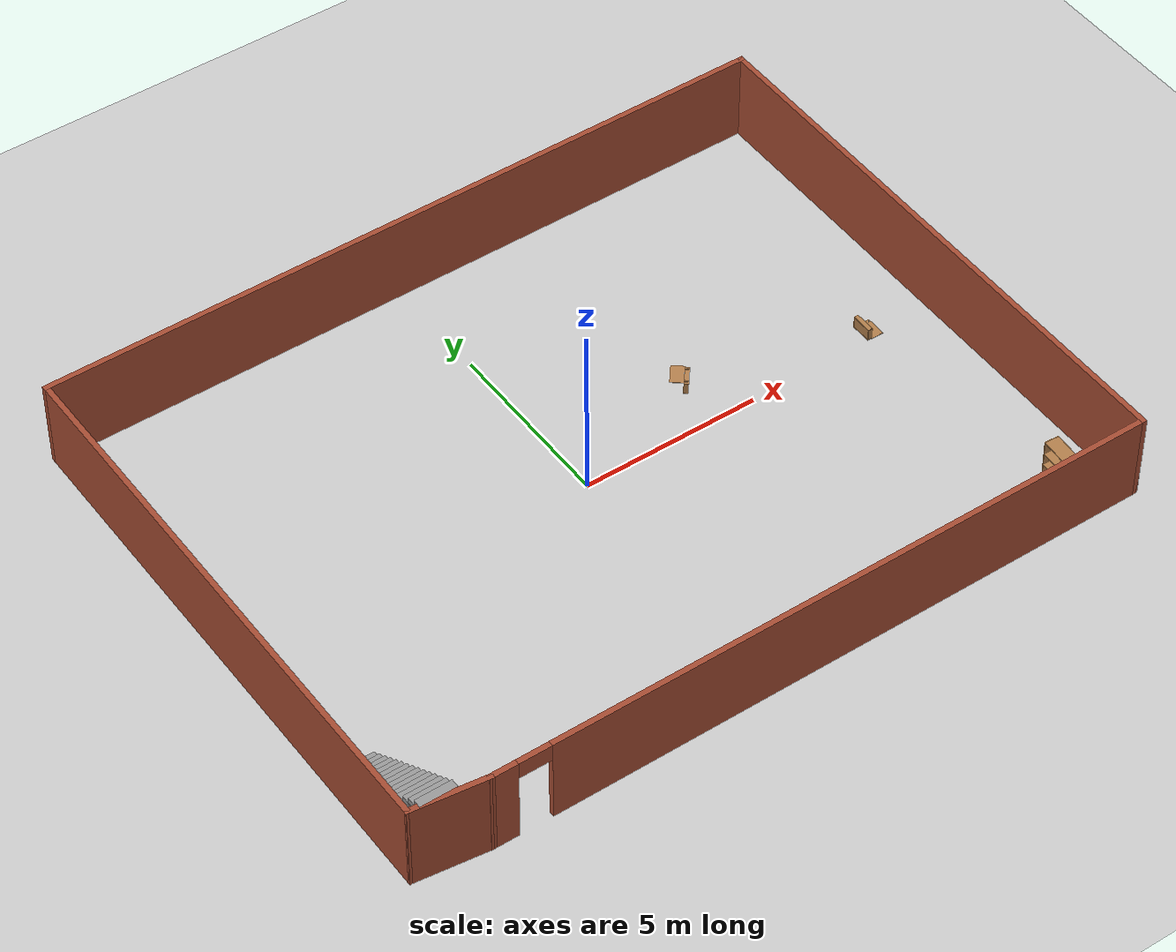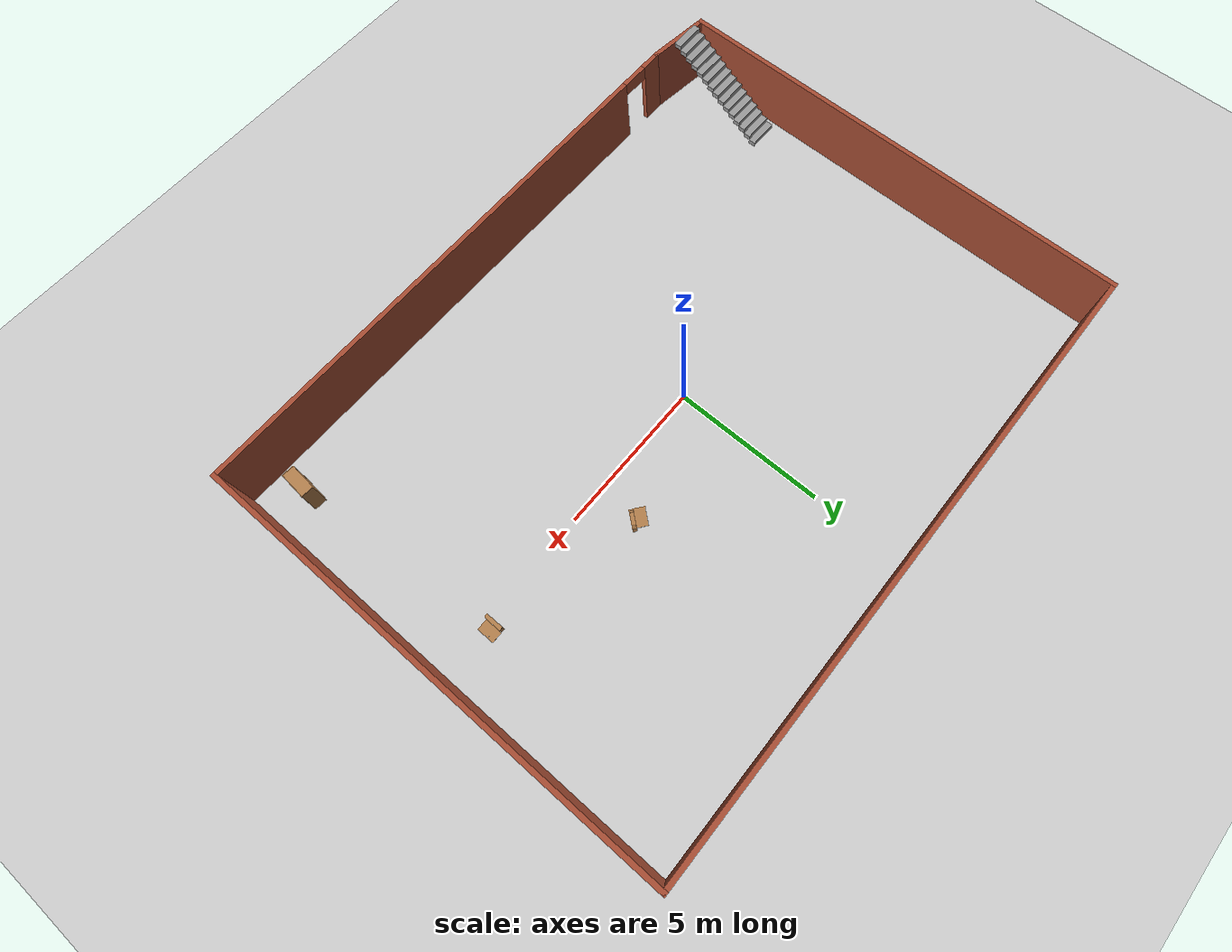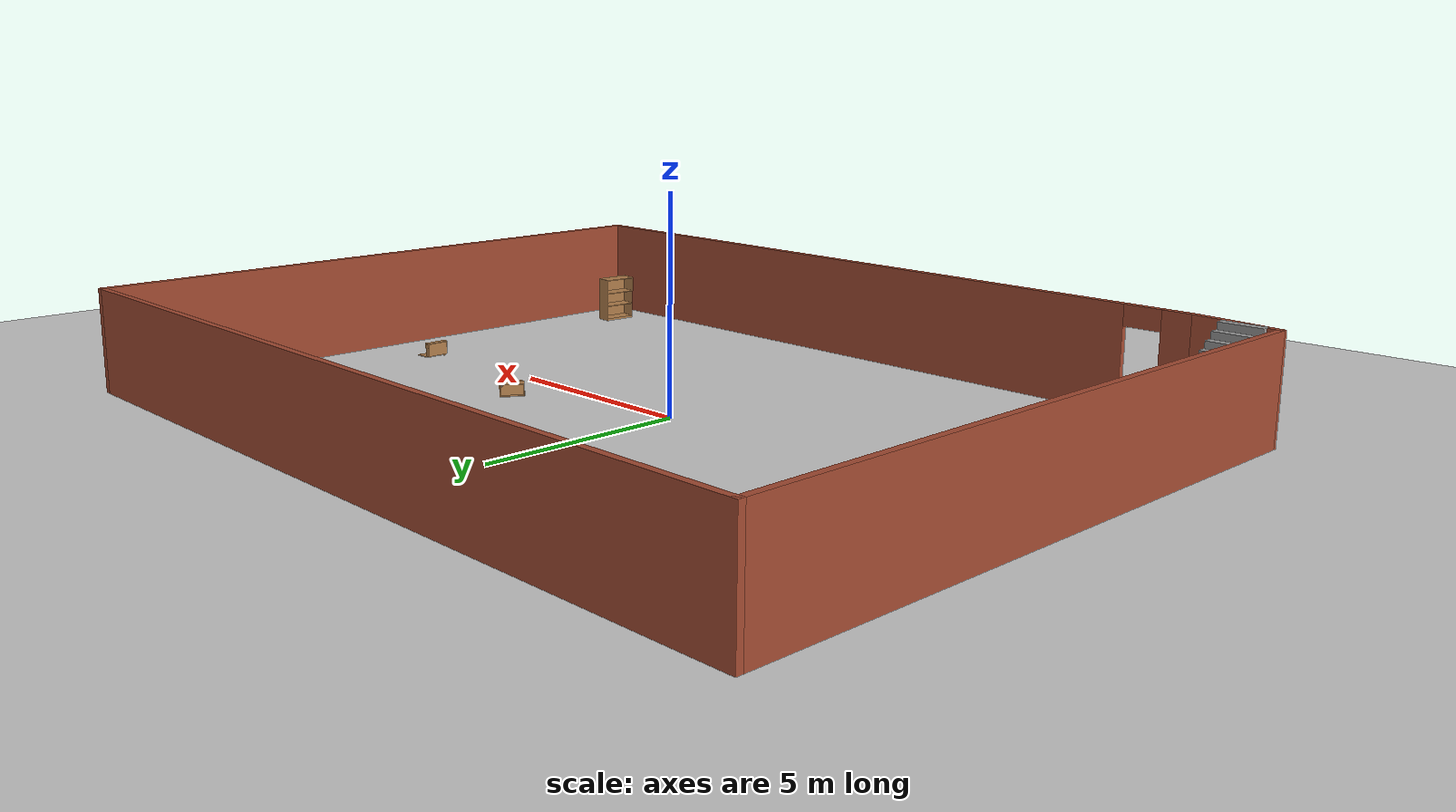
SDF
<sdf version="1.7">
 <world name="default">
  <model name="ground_plane">
   <static>1</static>
   <link name="link">
    <collision name="collision">
     <geometry><plane><normal>0 0 1</normal><size>100 100</size></plane></geometry>
     <surface><friction><ode><mu>100</mu><mu2>50</mu2></ode></friction></surface>
    </collision>
    <visual name="visual">
     <cast_shadows>0</cast_shadows>
     <geometry><plane><normal>0 0 1</normal><size>100 100</size></plane></geometry>
     <material>
      <script><uri>file://media/materials/scripts/gazebo.material</uri><name>Gazebo/Grey</name></script>
     </material>
    </visual>
   </link>
  </model>
  <model name="Untitled">
   <pose>0.302416 0.205559 0 0 -0 0</pose>
   <link name="Stairs_0">
    <visual name="Stairs_0_Visual_0">
     <pose>-9.52086 -4.35961 0.083333 0 -0 0</pose>
     <geometry><box><size>1 0.233333 0.166667</size></box></geometry>
     <material>
      <script><uri>file://media/materials/scripts/gazebo.material</uri><name>Gazebo/Grey</name></script>
      <ambient>1 1 1 1</ambient>
     </material>
     <meta><layer>0</layer></meta>
    </visual>
    <collision name="Stairs_0_Collision_0">
     <geometry><box><size>1 0.233333 0.166667</size></box></geometry>
     <pose>-9.52086 -4.35961 0.083333 0 -0 0</pose>
    </collision>
    <visual name="Stairs_0_Visual_1">
     <pose>-9.52086 -4.59294 0.25 0 -0 0</pose>
     <geometry><box><size>1 0.233333 0.166667</size></box></geometry>
     <material>
      <script><uri>file://media/materials/scripts/gazebo.material</uri><name>Gazebo/Grey</name></script>
      <ambient>1 1 1 1</ambient>
     </material>
     <meta><layer>0</layer></meta>
    </visual>
    <collision name="Stairs_0_Collision_1">
     <geometry><box><size>1 0.233333 0.166667</size></box></geometry>
     <pose>-9.52086 -4.59294 0.25 0 -0 0</pose>
    </collision>
    <visual name="Stairs_0_Visual_2">
     <pose>-9.52086 -4.82628 0.416667 0 -0 0</pose>
     <geometry><box><size>1 0.233333 0.166667</size></box></geometry>
     <material>
      <script><uri>file://media/materials/scripts/gazebo.material</uri><name>Gazebo/Grey</name></script>
      <ambient>1 1 1 1</ambient>
     </material>
     <meta><layer>0</layer></meta>
    </visual>
    <collision name="Stairs_0_Collision_2">
     <geometry><box><size>1 0.233333 0.166667</size></box></geometry>
     <pose>-9.52086 -4.82628 0.416667 0 -0 0</pose>
    </collision>
    <visual name="Stairs_0_Visual_3">
     <pose>-9.52086 -5.05961 0.583333 0 -0 0</pose>
     <geometry><box><size>1 0.233333 0.166667</size></box></geometry>
     <material>
      <script><uri>file://media/materials/scripts/gazebo.material</uri><name>Gazebo/Grey</name></script>
      <ambient>1 1 1 1</ambient>
     </material>
     <meta><layer>0</layer></meta>
    </visual>
    <collision name="Stairs_0_Collision_3">
     <geometry><box><size>1 0.233333 0.166667</size></box></geometry>
     <pose>-9.52086 -5.05961 0.583333 0 -0 0</pose>
    </collision>
    <visual name="Stairs_0_Visual_4">
     <pose>-9.52086 -5.29294 0.75 0 -0 0</pose>
     <geometry><box><size>1 0.233333 0.166667</size></box></geometry>
     <material>
      <script><uri>file://media/materials/scripts/gazebo.material</uri><name>Gazebo/Grey</name></script>
      <ambient>1 1 1 1</ambient>
     </material>
     <meta><layer>0</layer></meta>
    </visual>
    <collision name="Stairs_0_Collision_4">
     <geometry><box><size>1 0.233333 0.166667</size></box></geometry>
     <pose>-9.52086 -5.29294 0.75 0 -0 0</pose>
    </collision>
    <visual name="Stairs_0_Visual_5">
     <pose>-9.52086 -5.52628 0.916667 0 -0 0</pose>
     <geometry><box><size>1 0.233333 0.166667</size></box></geometry>
     <material>
      <script><uri>file://media/materials/scripts/gazebo.material</uri><name>Gazebo/Grey</name></script>
      <ambient>1 1 1 1</ambient>
     </material>
     <meta><layer>0</layer></meta>
    </visual>
    <collision name="Stairs_0_Collision_5">
     <geometry><box><size>1 0.233333 0.166667</size></box></geometry>
     <pose>-9.52086 -5.52628 0.916667 0 -0 0</pose>
    </collision>
    <visual name="Stairs_0_Visual_6">
     <pose>-9.52086 -5.75961 1.08333 0 -0 0</pose>
     <geometry><box><size>1 0.233333 0.166667</size></box></geometry>
     <material>
      <script><uri>file://media/materials/scripts/gazebo.material</uri><name>Gazebo/Grey</name></script>
      <ambient>1 1 1 1</ambient>
     </material>
     <meta><layer>0</layer></meta>
    </visual>
    <collision name="Stairs_0_Collision_6">
     <geometry><box><size>1 0.233333 0.166667</size></box></geometry>
     <pose>-9.52086 -5.75961 1.08333 0 -0 0</pose>
    </collision>
    <visual name="Stairs_0_Visual_7">
     <pose>-9.52086 -5.99294 1.25 0 -0 0</pose>
     <geometry><box><size>1 0.233333 0.166667</size></box></geometry>
     <material>
      <script><uri>file://media/materials/scripts/gazebo.material</uri><name>Gazebo/Grey</name></script>
      <ambient>1 1 1 1</ambient>
     </material>
     <meta><layer>0</layer></meta>
    </visual>
    <collision name="Stairs_0_Collision_7">
     <geometry><box><size>1 0.233333 0.166667</size></box></geometry>
     <pose>-9.52086 -5.99294 1.25 0 -0 0</pose>
    </collision>
    <visual name="Stairs_0_Visual_8">
     <pose>-9.52086 -6.22628 1.41667 0 -0 0</pose>
     <geometry><box><size>1 0.233333 0.166667</size></box></geometry>
     <material>
      <script><uri>file://media/materials/scripts/gazebo.material</uri><name>Gazebo/Grey</name></script>
      <ambient>1 1 1 1</ambient>
     </material>
     <meta><layer>0</layer></meta>
    </visual>
    <collision name="Stairs_0_Collision_8">
     <geometry><box><size>1 0.233333 0.166667</size></box></geometry>
     <pose>-9.52086 -6.22628 1.41667 0 -0 0</pose>
    </collision>
    <visual name="Stairs_0_Visual_9">
     <pose>-9.52086 -6.45961 1.58333 0 -0 0</pose>
     <geometry><box><size>1 0.233333 0.166667</size></box></geometry>
     <material>
      <script><uri>file://media/materials/scripts/gazebo.material</uri><name>Gazebo/Grey</name></script>
      <ambient>1 1 1 1</ambient>
     </material>
     <meta><layer>0</layer></meta>
    </visual>
    <collision name="Stairs_0_Collision_9">
     <geometry><box><size>1 0.233333 0.166667</size></box></geometry>
     <pose>-9.52086 -6.45961 1.58333 0 -0 0</pose>
    </collision>
    <visual name="Stairs_0_Visual_10">
     <pose>-9.52086 -6.69294 1.75 0 -0 0</pose>
     <geometry><box><size>1 0.233333 0.166667</size></box></geometry>
     <material>
      <script><uri>file://media/materials/scripts/gazebo.material</uri><name>Gazebo/Grey</name></script>
      <ambient>1 1 1 1</ambient>
     </material>
     <meta><layer>0</layer></meta>
    </visual>
    <collision name="Stairs_0_Collision_10">
     <geometry><box><size>1 0.233333 0.166667</size></box></geometry>
     <pose>-9.52086 -6.69294 1.75 0 -0 0</pose>
    </collision>
    <visual name="Stairs_0_Visual_11">
     <pose>-9.52086 -6.92628 1.91667 0 -0 0</pose>
     <geometry><box><size>1 0.233333 0.166667</size></box></geometry>
     <material>
      <script><uri>file://media/materials/scripts/gazebo.material</uri><name>Gazebo/Grey</name></script>
      <ambient>1 1 1 1</ambient>
     </material>
     <meta><layer>0</layer></meta>
    </visual>
    <collision name="Stairs_0_Collision_11">
     <geometry><box><size>1 0.233333 0.166667</size></box></geometry>
     <pose>-9.52086 -6.92628 1.91667 0 -0 0</pose>
    </collision>
    <visual name="Stairs_0_Visual_12">
     <pose>-9.52086 -7.15961 2.08333 0 -0 0</pose>
     <geometry><box><size>1 0.233333 0.166667</size></box></geometry>
     <material>
      <script><uri>file://media/materials/scripts/gazebo.material</uri><name>Gazebo/Grey</name></script>
      <ambient>1 1 1 1</ambient>
     </material>
     <meta><layer>0</layer></meta>
    </visual>
    <collision name="Stairs_0_Collision_12">
     <geometry><box><size>1 0.233333 0.166667</size></box></geometry>
     <pose>-9.52086 -7.15961 2.08333 0 -0 0</pose>
    </collision>
    <visual name="Stairs_0_Visual_13">
     <pose>-9.52086 -7.39294 2.25 0 -0 0</pose>
     <geometry><box><size>1 0.233333 0.166667</size></box></geometry>
     <material>
      <script><uri>file://media/materials/scripts/gazebo.material</uri><name>Gazebo/Grey</name></script>
      <ambient>1 1 1 1</ambient>
     </material>
     <meta><layer>0</layer></meta>
    </visual>
    <collision name="Stairs_0_Collision_13">
     <geometry><box><size>1 0.233333 0.166667</size></box></geometry>
     <pose>-9.52086 -7.39294 2.25 0 -0 0</pose>
    </collision>
    <visual name="Stairs_0_Visual_14">
     <pose>-9.52086 -7.62628 2.41667 0 -0 0</pose>
     <geometry><box><size>1 0.233333 0.166667</size></box></geometry>
     <material>
      <script><uri>file://media/materials/scripts/gazebo.material</uri><name>Gazebo/Grey</name></script>
      <ambient>1 1 1 1</ambient>
     </material>
     <meta><layer>0</layer></meta>
    </visual>
    <collision name="Stairs_0_Collision_14">
     <geometry><box><size>1 0.233333 0.166667</size></box></geometry>
     <pose>-9.52086 -7.62628 2.41667 0 -0 0</pose>
    </collision>
   </link>
   <link name="Wall_1">
    <pose>1.00436 -7.92064 0 0 -0 0</pose>
    <visual name="Wall_1_Visual_0">
     <pose>-8.99137 0 1.25 0 -0 0</pose>
     <geometry><box><size>0.767258 0.15 2.5</size></box></geometry>
     <material>
      <script><uri>file://media/materials/scripts/gazebo.material</uri><name>Gazebo/Bricks</name></script>
      <ambient>1 1 1 1</ambient>
     </material>
     <meta><layer>0</layer></meta>
    </visual>
    <collision name="Wall_1_Collision_0">
     <geometry><box><size>0.767258 0.15 2.5</size></box></geometry>
     <pose>-8.99137 0 1.25 0 -0 0</pose>
    </collision>
    <visual name="Wall_1_Visual_1">
     <pose>0.833629 0 1.25 0 -0 0</pose>
     <geometry><box><size>17.0827 0.15 2.5</size></box></geometry>
     <material>
      <script><uri>file://media/materials/scripts/gazebo.material</uri><name>Gazebo/Bricks</name></script>
      <ambient>1 1 1 1</ambient>
     </material>
     <meta><layer>0</layer></meta>
    </visual>
    <collision name="Wall_1_Collision_1">
     <geometry><box><size>17.0827 0.15 2.5</size></box></geometry>
     <pose>0.833629 0 1.25 0 -0 0</pose>
    </collision>
    <visual name="Wall_1_Visual_2">
     <pose>-8.15774 0 2.25 0 -0 0</pose>
     <geometry><box><size>0.9 0.15 0.5</size></box></geometry>
     <material>
      <script><uri>file://media/materials/scripts/gazebo.material</uri><name>Gazebo/Bricks</name></script>
      <ambient>1 1 1 1</ambient>
     </material>
     <meta><layer>0</layer></meta>
    </visual>
    <collision name="Wall_1_Collision_2">
     <geometry><box><size>0.9 0.15 0.5</size></box></geometry>
     <pose>-8.15774 0 2.25 0 -0 0</pose>
    </collision>
   </link>
   <link name="Wall_2">
    <collision name="Wall_2_Collision">
     <geometry><box><size>16 0.15 2.5</size></box></geometry>
     <pose>0 0 1.25 0 -0 0</pose>
    </collision>
    <visual name="Wall_2_Visual">
     <pose>0 0 1.25 0 -0 0</pose>
     <geometry><box><size>16 0.15 2.5</size></box></geometry>
     <material>
      <script><uri>file://media/materials/scripts/gazebo.material</uri><name>Gazebo/Bricks</name></script>
      <ambient>1 1 1 1</ambient>
     </material>
     <meta><layer>0</layer></meta>
    </visual>
    <pose>10.3044 0.004361 0 0 -0 1.5708</pose>
   </link>
   <link name="Wall_3">
    <collision name="Wall_3_Collision">
     <geometry><box><size>20.75 0.15 2.5</size></box></geometry>
     <pose>0 0 1.25 0 -0 0</pose>
    </collision>
    <visual name="Wall_3_Visual">
     <pose>0 0 1.25 0 -0 0</pose>
     <geometry><box><size>20.75 0.15 2.5</size></box></geometry>
     <material>
      <script><uri>file://media/materials/scripts/gazebo.material</uri><name>Gazebo/Bricks</name></script>
      <ambient>1 1 1 1</ambient>
     </material>
     <meta><layer>0</layer></meta>
    </visual>
    <pose>0.004362 7.92936 0 0 -0 3.14159</pose>
   </link>
   <link name="Wall_4">
    <collision name="Wall_4_Collision">
     <geometry><box><size>15.75 0.15 2.5</size></box></geometry>
     <pose>0 0 1.25 0 -0 0</pose>
    </collision>
    <visual name="Wall_4_Visual">
     <pose>0 0 1.25 0 -0 0</pose>
     <geometry><box><size>15.75 0.15 2.5</size></box></geometry>
     <material>
      <script><uri>file://media/materials/scripts/gazebo.material</uri><name>Gazebo/Bricks</name></script>
      <ambient>1 1 1 1</ambient>
     </material>
     <meta><layer>0</layer></meta>
    </visual>
    <pose>-10.2956 0.129361 0 0 -0 -1.5708</pose>
   </link>
   <link name="Wall_5">
    <collision name="Wall_5_Collision">
     <geometry><box><size>2.16556 0.15 2.5</size></box></geometry>
     <pose>0 0 1.25 0 -0 0</pose>
    </collision>
    <visual name="Wall_5_Visual">
     <pose>0 0 1.25 0 -0 0</pose>
     <geometry><box><size>2.16556 0.15 2.5</size></box></geometry>
     <material>
      <script><uri>file://media/materials/scripts/gazebo.material</uri><name>Gazebo/Bricks</name></script>
      <ambient>1 1 1 1</ambient>
     </material>
     <meta><layer>0</layer></meta>
    </visual>
    <pose>-9.29564 -7.79564 0 0 -0 -0.124355</pose>
   </link>
   <static>1</static>
  </model>
  <model name="bookshelf">
   <static>1</static>
   <link name="link">
    <inertial><mass>1</mass></inertial>
    <collision name="back">
     <pose>0 0.005 0.6 0 -0 0</pose>
     <geometry><box><size>0.9 0.01 1.2</size></box></geometry>
    </collision>
    <visual name="visual1">
     <pose>0 0.005 0.6 0 -0 0</pose>
     <geometry><box><size>0.9 0.01 1.2</size></box></geometry>
     <material>
      <script><uri>file://media/materials/scripts/gazebo.material</uri><name>Gazebo/Wood</name></script>
     </material>
    </visual>
    <collision name="left_side">
     <pose>0.45 -0.195 0.6 0 -0 0</pose>
     <geometry><box><size>0.02 0.4 1.2</size></box></geometry>
    </collision>
    <visual name="visual2">
     <pose>0.45 -0.195 0.6 0 -0 0</pose>
     <geometry><box><size>0.02 0.4 1.2</size></box></geometry>
     <material>
      <script><uri>file://media/materials/scripts/gazebo.material</uri><name>Gazebo/Wood</name></script>
     </material>
    </visual>
    <collision name="right_side">
     <pose>-0.45 -0.195 0.6 0 -0 0</pose>
     <geometry><box><size>0.02 0.4 1.2</size></box></geometry>
    </collision>
    <visual name="visual3">
     <pose>-0.45 -0.195 0.6 0 -0 0</pose>
     <geometry><box><size>0.02 0.4 1.2</size></box></geometry>
     <material>
      <script><uri>file://media/materials/scripts/gazebo.material</uri><name>Gazebo/Wood</name></script>
     </material>
    </visual>
    <collision name="bottom">
     <pose>0 -0.195 0.03 0 -0 0</pose>
     <geometry><box><size>0.88 0.4 0.06</size></box></geometry>
    </collision>
    <visual name="visual4">
     <pose>0 -0.195 0.03 0 -0 0</pose>
     <geometry><box><size>0.88 0.4 0.06</size></box></geometry>
     <material>
      <script><uri>file://media/materials/scripts/gazebo.material</uri><name>Gazebo/Wood</name></script>
     </material>
    </visual>
    <collision name="top">
     <pose>0 -0.195 1.19 0 -0 0</pose>
     <geometry><box><size>0.88 0.4 0.02</size></box></geometry>
    </collision>
    <visual name="visual5">
     <pose>0 -0.195 1.19 0 -0 0</pose>
     <geometry><box><size>0.88 0.4 0.02</size></box></geometry>
     <material>
      <script><uri>file://media/materials/scripts/gazebo.material</uri><name>Gazebo/Wood</name></script>
     </material>
    </visual>
    <collision name="low_shelf">
     <pose>0 -0.195 0.43 0 -0 0</pose>
     <geometry><box><size>0.88 0.4 0.02</size></box></geometry>
    </collision>
    <visual name="visual6">
     <pose>0 -0.195 0.43 0 -0 0</pose>
     <geometry><box><size>0.88 0.4 0.02</size></box></geometry>
     <material>
      <script><uri>file://media/materials/scripts/gazebo.material</uri><name>Gazebo/Wood</name></script>
     </material>
    </visual>
    <collision name="high_shelf">
     <pose>0 -0.195 0.8 0 -0 0</pose>
     <geometry><box><size>0.88 0.4 0.02</size></box></geometry>
    </collision>
    <visual name="visual7">
     <pose>0 -0.195 0.8 0 -0 0</pose>
     <geometry><box><size>0.88 0.4 0.02</size></box></geometry>
     <material>
      <script><uri>file://media/materials/scripts/gazebo.material</uri><name>Gazebo/Wood</name></script>
     </material>
    </visual>
   </link>
   <pose>9.5222 -6.52823 -0.009255 0.019523 0.001491 -1.64703</pose>
  </model>
  <model name="wooden_case_metal_peg">
   <frame name="wooden_case::__model__" attached_to="wooden_case::base">
    <pose relative_to="__model__">0 0 0 0 -0 0</pose>
   </frame>
   <link name="wooden_case::base">
    <pose relative_to="wooden_case::__model__">0 0 0.024 0 -0 0</pose>
    <inertial>
     <pose>-0.022184 0 0.171592 0 -0 0</pose>
     <mass>3.96264</mass>
     <inertia>
      <ixx>0.213536</ixx>
      <ixy>0</ixy>
      <ixz>0.000779377</ixz>
      <iyy>0.0708943</iyy>
      <iyz>0</iyz>
      <izz>0.154604</izz>
     </inertia>
    </inertial>
    <collision name="collision_back">
     <pose>-0.053975 0 0.1778 0 -0 0</pose>
     <geometry><box><size>0.01905 0.5461 0.3175</size></box></geometry>
     <surface>
      <contact>
       <poissons_ratio>0.347</poissons_ratio>
       <elastic_modulus>8.8e+09</elastic_modulus>
       <ode><kp>100000</kp><kd>100</kd><max_vel>100</max_vel><min_depth>0.001</min_depth></ode>
      </contact>
      <friction>
       <torsional>
        <coefficient>1</coefficient>
        <use_patch_radius>0</use_patch_radius>
        <surface_radius>0.01</surface_radius>
       </torsional>
      </friction>
     </surface>
    </collision>
    <visual name="visual_back">
     <pose>-0.053975 0 0.1778 0 -0 0</pose>
     <geometry><box><size>0.01905 0.5461 0.3175</size></box></geometry>
     <material>
      <script><uri>file://media/materials/scripts/gazebo.material</uri><name>Gazebo/Wood</name></script>
     </material>
    </visual>
    <collision name="collision_bottom">
     <pose>0 0 0.009525 0 -0 0</pose>
     <geometry><box><size>0.127 0.5842 0.01905</size></box></geometry>
     <surface>
      <contact>
       <poissons_ratio>0.347</poissons_ratio>
       <elastic_modulus>8.8e+09</elastic_modulus>
       <ode><kp>100000</kp><kd>100</kd><max_vel>100</max_vel><min_depth>0.001</min_depth></ode>
      </contact>
      <friction>
       <torsional>
        <coefficient>1</coefficient>
        <use_patch_radius>0</use_patch_radius>
        <surface_radius>0.01</surface_radius>
       </torsional>
      </friction>
     </surface>
    </collision>
    <visual name="visual_bottom">
     <pose>0 0 0.009525 0 -0 0</pose>
     <geometry><box><size>0.127 0.5842 0.01905</size></box></geometry>
     <material>
      <script><uri>file://media/materials/scripts/gazebo.material</uri><name>Gazebo/Wood</name></script>
     </material>
    </visual>
    <collision name="collision_top">
     <pose>0 0 0.346075 0 -0 0</pose>
     <geometry><box><size>0.127 0.5842 0.01905</size></box></geometry>
     <surface>
      <contact>
       <poissons_ratio>0.347</poissons_ratio>
       <elastic_modulus>8.8e+09</elastic_modulus>
       <ode><kp>100000</kp><kd>100</kd><max_vel>100</max_vel><min_depth>0.001</min_depth></ode>
      </contact>
      <friction>
       <torsional>
        <coefficient>1</coefficient>
        <use_patch_radius>0</use_patch_radius>
        <surface_radius>0.01</surface_radius>
       </torsional>
      </friction>
     </surface>
    </collision>
    <visual name="visual_top">
     <pose>0 0 0.346075 0 -0 0</pose>
     <geometry><box><size>0.127 0.5842 0.01905</size></box></geometry>
     <material>
      <script><uri>file://media/materials/scripts/gazebo.material</uri><name>Gazebo/Wood</name></script>
     </material>
    </visual>
    <collision name="collision_left">
     <pose>0 -0.282575 0.1778 0 -0 0</pose>
     <geometry><box><size>0.127 0.01905 0.3175</size></box></geometry>
     <surface>
      <contact>
       <poissons_ratio>0.347</poissons_ratio>
       <elastic_modulus>8.8e+09</elastic_modulus>
       <ode><kp>100000</kp><kd>100</kd><max_vel>100</max_vel><min_depth>0.001</min_depth></ode>
      </contact>
      <friction>
       <torsional>
        <coefficient>1</coefficient>
        <use_patch_radius>0</use_patch_radius>
        <surface_radius>0.01</surface_radius>
       </torsional>
      </friction>
     </surface>
    </collision>
    <visual name="visual_left">
     <pose>0 -0.282575 0.1778 0 -0 0</pose>
     <geometry><box><size>0.127 0.01905 0.3175</size></box></geometry>
     <material>
      <script><uri>file://media/materials/scripts/gazebo.material</uri><name>Gazebo/Wood</name></script>
     </material>
    </visual>
    <collision name="collision_right">
     <pose>0 0.282575 0.1778 0 -0 0</pose>
     <geometry><box><size>0.127 0.01905 0.3175</size></box></geometry>
     <surface>
      <contact>
       <poissons_ratio>0.347</poissons_ratio>
       <elastic_modulus>8.8e+09</elastic_modulus>
       <ode><kp>100000</kp><kd>100</kd><max_vel>100</max_vel><min_depth>0.001</min_depth></ode>
      </contact>
      <friction>
       <torsional>
        <coefficient>1</coefficient>
        <use_patch_radius>0</use_patch_radius>
        <surface_radius>0.01</surface_radius>
       </torsional>
      </friction>
     </surface>
    </collision>
    <visual name="visual_right">
     <pose>0 0.282575 0.1778 0 -0 0</pose>
     <geometry><box><size>0.127 0.01905 0.3175</size></box></geometry>
     <material>
      <script><uri>file://media/materials/scripts/gazebo.material</uri><name>Gazebo/Wood</name></script>
     </material>
    </visual>
    <collision name="collision_block_left">
     <pose>0.0095 -0.2151 -0.012 0 -0 0</pose>
     <geometry><box><size>0.108 0.05 0.024</size></box></geometry>
     <surface>
      <contact>
       <poissons_ratio>0.347</poissons_ratio>
       <elastic_modulus>8.8e+09</elastic_modulus>
       <ode><kp>100000</kp><kd>100</kd><max_vel>100</max_vel><min_depth>0.001</min_depth></ode>
      </contact>
      <friction>
       <torsional>
        <coefficient>1</coefficient>
        <use_patch_radius>0</use_patch_radius>
        <surface_radius>0.01</surface_radius>
       </torsional>
      </friction>
     </surface>
    </collision>
    <visual name="visual_block_left">
     <pose>0.0095 -0.2151 -0.012 0 -0 0</pose>
     <geometry><box><size>0.108 0.05 0.024</size></box></geometry>
     <material>
      <script><uri>file://media/materials/scripts/gazebo.material</uri><name>Gazebo/Wood</name></script>
     </material>
    </visual>
    <collision name="collision_block_right">
     <pose>0.0095 0.2151 -0.012 0 -0 0</pose>
     <geometry><box><size>0.108 0.05 0.024</size></box></geometry>
     <surface>
      <contact>
       <poissons_ratio>0.347</poissons_ratio>
       <elastic_modulus>8.8e+09</elastic_modulus>
       <ode><kp>100000</kp><kd>100</kd><max_vel>100</max_vel><min_depth>0.001</min_depth></ode>
      </contact>
      <friction>
       <torsional>
        <coefficient>1</coefficient>
        <use_patch_radius>0</use_patch_radius>
        <surface_radius>0.01</surface_radius>
       </torsional>
      </friction>
     </surface>
    </collision>
    <visual name="visual_block_right">
     <pose>0.0095 0.2151 -0.012 0 -0 0</pose>
     <geometry><box><size>0.108 0.05 0.024</size></box></geometry>
     <material>
      <script><uri>file://media/materials/scripts/gazebo.material</uri><name>Gazebo/Wood</name></script>
     </material>
    </visual>
   </link>
   <link name="wooden_case::lid">
    <pose relative_to="wooden_case::__model__">0.243775 0 0.009525 0 -0 0</pose>
    <inertial>
     <mass>1.97874</mass>
     <inertia>
      <ixx>0.0563367</ixx>
      <ixy>0</ixy>
      <ixz>0</ixz>
      <iyy>0.020911</iyy>
      <iyz>0</iyz>
      <izz>0.0771281</izz>
     </inertia>
    </inertial>
    <collision name="collision">
     <geometry><box><size>0.3556 0.5842 0.01905</size></box></geometry>
     <surface>
      <contact>
       <poissons_ratio>0.347</poissons_ratio>
       <elastic_modulus>8.8e+09</elastic_modulus>
       <ode><kp>100000</kp><kd>100</kd><max_vel>100</max_vel><min_depth>0.001</min_depth></ode>
      </contact>
      <friction>
       <torsional>
        <coefficient>1</coefficient>
        <use_patch_radius>0</use_patch_radius>
        <surface_radius>0.01</surface_radius>
       </torsional>
      </friction>
     </surface>
    </collision>
    <visual name="visual">
     <geometry><box><size>0.3556 0.5842 0.01905</size></box></geometry>
     <material>
      <script><uri>file://media/materials/scripts/gazebo.material</uri><name>Gazebo/Wood</name></script>
     </material>
    </visual>
    <visual name="tee_nut_1">
     <pose>0.122 -0.216 0 0 -0 0</pose>
     <geometry><cylinder><radius>0.00635</radius><length>0.0192405</length></cylinder></geometry>
     <material>
      <script><uri>file://media/materials/scripts/gazebo.material</uri><name>Gazebo/Grey</name></script>
     </material>
    </visual>
    <visual name="tee_nut_2">
     <pose>0.122 -0.088 0 0 -0 0</pose>
     <geometry><cylinder><radius>0.00635</radius><length>0.0192405</length></cylinder></geometry>
     <material>
      <script><uri>file://media/materials/scripts/gazebo.material</uri><name>Gazebo/Grey</name></script>
     </material>
    </visual>
    <visual name="tee_nut_3">
     <pose>0.122 0.088 0 0 -0 0</pose>
     <geometry><cylinder><radius>0.00635</radius><length>0.0192405</length></cylinder></geometry>
     <material>
      <script><uri>file://media/materials/scripts/gazebo.material</uri><name>Gazebo/Grey</name></script>
     </material>
    </visual>
    <visual name="tee_nut_4">
     <pose>0.122 0.216 0 0 -0 0</pose>
     <geometry><cylinder><radius>0.00635</radius><length>0.0192405</length></cylinder></geometry>
     <material>
      <script><uri>file://media/materials/scripts/gazebo.material</uri><name>Gazebo/Grey</name></script>
     </material>
    </visual>
   </link>
   <joint name="wooden_case::lid_hinge" type="revolute">
    <pose>-0.1778 0 0.01905 0 -0 0</pose>
    <parent>wooden_case::base</parent>
    <child>wooden_case::lid</child>
    <axis>
     <xyz>0 1 0</xyz>
     <limit><upper>0.523599</upper><lower>-1.5708</lower></limit>
     <dynamics><spring_reference>0</spring_reference><spring_stiffness>0</spring_stiffness></dynamics>
    </axis>
   </joint>
   <frame name="peg::__model__" attached_to="peg::link">
    <pose relative_to="__model__">0.365774 0.216 0.01905 0 -0 0</pose>
   </frame>
   <link name="peg::link">
    <pose relative_to="peg::__model__">0 0 0.031 0 -0 0</pose>
    <inertial>
     <mass>0.0121</mass>
     <inertia>
      <ixx>3.90898e-06</ixx>
      <ixy>0</ixy>
      <ixz>0</ixz>
      <iyy>3.90898e-06</iyy>
      <iyz>0</iyz>
      <izz>6.58845e-08</izz>
     </inertia>
    </inertial>
    <collision name="collision">
     <geometry><cylinder><radius>0.0033</radius><length>0.062</length></cylinder></geometry>
     <surface>
      <contact>
       <poissons_ratio>0.305</poissons_ratio>
       <elastic_modulus>2e+11</elastic_modulus>
       <ode><kp>100000</kp><kd>100</kd><max_vel>100</max_vel><min_depth>0.001</min_depth></ode>
      </contact>
      <friction>
       <torsional>
        <coefficient>1</coefficient>
        <use_patch_radius>0</use_patch_radius>
        <surface_radius>0.01</surface_radius>
       </torsional>
      </friction>
     </surface>
    </collision>
    <visual name="visual">
     <geometry><cylinder><radius>0.0033</radius><length>0.062</length></cylinder></geometry>
     <material>
      <script><uri>file://media/materials/scripts/gazebo.material</uri><name>Gazebo/Grey</name></script>
     </material>
    </visual>
   </link>
   <joint name="case_peg" type="revolute">
    <child>peg::link</child>
    <parent>wooden_case::lid</parent>
    <axis>
     <xyz>0 0 1</xyz>
     <limit><upper>0</upper><lower>0</lower></limit>
     <dynamics><spring_reference>0</spring_reference><spring_stiffness>0</spring_stiffness></dynamics>
    </axis>
   </joint>
   <pose>3.9614 1.35485 0.38034 -3.14159 -0.032855 2.46006</pose>
  </model>
  <model name="wooden_case_metal_peg_clone">
   <frame name="wooden_case::__model__" attached_to="wooden_case::base">
    <pose relative_to="__model__">0 0 0 0 -0 0</pose>
   </frame>
   <link name="wooden_case::base">
    <pose relative_to="wooden_case::__model__">0 0 0.024 0 -0 0</pose>
    <inertial>
     <pose>-0.022184 0 0.171592 0 -0 0</pose>
     <mass>3.96264</mass>
     <inertia>
      <ixx>0.213536</ixx>
      <ixy>0</ixy>
      <ixz>0.000779377</ixz>
      <iyy>0.0708943</iyy>
      <iyz>0</iyz>
      <izz>0.154604</izz>
     </inertia>
    </inertial>
    <collision name="collision_back">
     <pose>-0.053975 0 0.1778 0 -0 0</pose>
     <geometry><box><size>0.01905 0.5461 0.3175</size></box></geometry>
     <surface>
      <contact>
       <poissons_ratio>0.347</poissons_ratio>
       <elastic_modulus>8.8e+09</elastic_modulus>
       <ode><kp>100000</kp><kd>100</kd><max_vel>100</max_vel><min_depth>0.001</min_depth></ode>
      </contact>
      <friction>
       <torsional>
        <coefficient>1</coefficient>
        <use_patch_radius>0</use_patch_radius>
        <surface_radius>0.01</surface_radius>
       </torsional>
      </friction>
     </surface>
    </collision>
    <visual name="visual_back">
     <pose>-0.053975 0 0.1778 0 -0 0</pose>
     <geometry><box><size>0.01905 0.5461 0.3175</size></box></geometry>
     <material>
      <script><uri>file://media/materials/scripts/gazebo.material</uri><name>Gazebo/Wood</name></script>
     </material>
    </visual>
    <collision name="collision_bottom">
     <pose>0 0 0.009525 0 -0 0</pose>
     <geometry><box><size>0.127 0.5842 0.01905</size></box></geometry>
     <surface>
      <contact>
       <poissons_ratio>0.347</poissons_ratio>
       <elastic_modulus>8.8e+09</elastic_modulus>
       <ode><kp>100000</kp><kd>100</kd><max_vel>100</max_vel><min_depth>0.001</min_depth></ode>
      </contact>
      <friction>
       <torsional>
        <coefficient>1</coefficient>
        <use_patch_radius>0</use_patch_radius>
        <surface_radius>0.01</surface_radius>
       </torsional>
      </friction>
     </surface>
    </collision>
    <visual name="visual_bottom">
     <pose>0 0 0.009525 0 -0 0</pose>
     <geometry><box><size>0.127 0.5842 0.01905</size></box></geometry>
     <material>
      <script><uri>file://media/materials/scripts/gazebo.material</uri><name>Gazebo/Wood</name></script>
     </material>
    </visual>
    <collision name="collision_top">
     <pose>0 0 0.346075 0 -0 0</pose>
     <geometry><box><size>0.127 0.5842 0.01905</size></box></geometry>
     <surface>
      <contact>
       <poissons_ratio>0.347</poissons_ratio>
       <elastic_modulus>8.8e+09</elastic_modulus>
       <ode><kp>100000</kp><kd>100</kd><max_vel>100</max_vel><min_depth>0.001</min_depth></ode>
      </contact>
      <friction>
       <torsional>
        <coefficient>1</coefficient>
        <use_patch_radius>0</use_patch_radius>
        <surface_radius>0.01</surface_radius>
       </torsional>
      </friction>
     </surface>
    </collision>
    <visual name="visual_top">
     <pose>0 0 0.346075 0 -0 0</pose>
     <geometry><box><size>0.127 0.5842 0.01905</size></box></geometry>
     <material>
      <script><uri>file://media/materials/scripts/gazebo.material</uri><name>Gazebo/Wood</name></script>
     </material>
    </visual>
    <collision name="collision_left">
     <pose>0 -0.282575 0.1778 0 -0 0</pose>
     <geometry><box><size>0.127 0.01905 0.3175</size></box></geometry>
     <surface>
      <contact>
       <poissons_ratio>0.347</poissons_ratio>
       <elastic_modulus>8.8e+09</elastic_modulus>
       <ode><kp>100000</kp><kd>100</kd><max_vel>100</max_vel><min_depth>0.001</min_depth></ode>
      </contact>
      <friction>
       <torsional>
        <coefficient>1</coefficient>
        <use_patch_radius>0</use_patch_radius>
        <surface_radius>0.01</surface_radius>
       </torsional>
      </friction>
     </surface>
    </collision>
    <visual name="visual_left">
     <pose>0 -0.282575 0.1778 0 -0 0</pose>
     <geometry><box><size>0.127 0.01905 0.3175</size></box></geometry>
     <material>
      <script><uri>file://media/materials/scripts/gazebo.material</uri><name>Gazebo/Wood</name></script>
     </material>
    </visual>
    <collision name="collision_right">
     <pose>0 0.282575 0.1778 0 -0 0</pose>
     <geometry><box><size>0.127 0.01905 0.3175</size></box></geometry>
     <surface>
      <contact>
       <poissons_ratio>0.347</poissons_ratio>
       <elastic_modulus>8.8e+09</elastic_modulus>
       <ode><kp>100000</kp><kd>100</kd><max_vel>100</max_vel><min_depth>0.001</min_depth></ode>
      </contact>
      <friction>
       <torsional>
        <coefficient>1</coefficient>
        <use_patch_radius>0</use_patch_radius>
        <surface_radius>0.01</surface_radius>
       </torsional>
      </friction>
     </surface>
    </collision>
    <visual name="visual_right">
     <pose>0 0.282575 0.1778 0 -0 0</pose>
     <geometry><box><size>0.127 0.01905 0.3175</size></box></geometry>
     <material>
      <script><uri>file://media/materials/scripts/gazebo.material</uri><name>Gazebo/Wood</name></script>
     </material>
    </visual>
    <collision name="collision_block_left">
     <pose>0.0095 -0.2151 -0.012 0 -0 0</pose>
     <geometry><box><size>0.108 0.05 0.024</size></box></geometry>
     <surface>
      <contact>
       <poissons_ratio>0.347</poissons_ratio>
       <elastic_modulus>8.8e+09</elastic_modulus>
       <ode><kp>100000</kp><kd>100</kd><max_vel>100</max_vel><min_depth>0.001</min_depth></ode>
      </contact>
      <friction>
       <torsional>
        <coefficient>1</coefficient>
        <use_patch_radius>0</use_patch_radius>
        <surface_radius>0.01</surface_radius>
       </torsional>
      </friction>
     </surface>
    </collision>
    <visual name="visual_block_left">
     <pose>0.0095 -0.2151 -0.012 0 -0 0</pose>
     <geometry><box><size>0.108 0.05 0.024</size></box></geometry>
     <material>
      <script><uri>file://media/materials/scripts/gazebo.material</uri><name>Gazebo/Wood</name></script>
     </material>
    </visual>
    <collision name="collision_block_right">
     <pose>0.0095 0.2151 -0.012 0 -0 0</pose>
     <geometry><box><size>0.108 0.05 0.024</size></box></geometry>
     <surface>
      <contact>
       <poissons_ratio>0.347</poissons_ratio>
       <elastic_modulus>8.8e+09</elastic_modulus>
       <ode><kp>100000</kp><kd>100</kd><max_vel>100</max_vel><min_depth>0.001</min_depth></ode>
      </contact>
      <friction>
       <torsional>
        <coefficient>1</coefficient>
        <use_patch_radius>0</use_patch_radius>
        <surface_radius>0.01</surface_radius>
       </torsional>
      </friction>
     </surface>
    </collision>
    <visual name="visual_block_right">
     <pose>0.0095 0.2151 -0.012 0 -0 0</pose>
     <geometry><box><size>0.108 0.05 0.024</size></box></geometry>
     <material>
      <script><uri>file://media/materials/scripts/gazebo.material</uri><name>Gazebo/Wood</name></script>
     </material>
    </visual>
   </link>
   <link name="wooden_case::lid">
    <pose relative_to="wooden_case::__model__">0.243775 0 0.009525 0 -0 0</pose>
    <inertial>
     <mass>1.97874</mass>
     <inertia>
      <ixx>0.0563367</ixx>
      <ixy>0</ixy>
      <ixz>0</ixz>
      <iyy>0.020911</iyy>
      <iyz>0</iyz>
      <izz>0.0771281</izz>
     </inertia>
    </inertial>
    <collision name="collision">
     <geometry><box><size>0.3556 0.5842 0.01905</size></box></geometry>
     <surface>
      <contact>
       <poissons_ratio>0.347</poissons_ratio>
       <elastic_modulus>8.8e+09</elastic_modulus>
       <ode><kp>100000</kp><kd>100</kd><max_vel>100</max_vel><min_depth>0.001</min_depth></ode>
      </contact>
      <friction>
       <torsional>
        <coefficient>1</coefficient>
        <use_patch_radius>0</use_patch_radius>
        <surface_radius>0.01</surface_radius>
       </torsional>
      </friction>
     </surface>
    </collision>
    <visual name="visual">
     <geometry><box><size>0.3556 0.5842 0.01905</size></box></geometry>
     <material>
      <script><uri>file://media/materials/scripts/gazebo.material</uri><name>Gazebo/Wood</name></script>
     </material>
    </visual>
    <visual name="tee_nut_1">
     <pose>0.122 -0.216 0 0 -0 0</pose>
     <geometry><cylinder><radius>0.00635</radius><length>0.0192405</length></cylinder></geometry>
     <material>
      <script><uri>file://media/materials/scripts/gazebo.material</uri><name>Gazebo/Grey</name></script>
     </material>
    </visual>
    <visual name="tee_nut_2">
     <pose>0.122 -0.088 0 0 -0 0</pose>
     <geometry><cylinder><radius>0.00635</radius><length>0.0192405</length></cylinder></geometry>
     <material>
      <script><uri>file://media/materials/scripts/gazebo.material</uri><name>Gazebo/Grey</name></script>
     </material>
    </visual>
    <visual name="tee_nut_3">
     <pose>0.122 0.088 0 0 -0 0</pose>
     <geometry><cylinder><radius>0.00635</radius><length>0.0192405</length></cylinder></geometry>
     <material>
      <script><uri>file://media/materials/scripts/gazebo.material</uri><name>Gazebo/Grey</name></script>
     </material>
    </visual>
    <visual name="tee_nut_4">
     <pose>0.122 0.216 0 0 -0 0</pose>
     <geometry><cylinder><radius>0.00635</radius><length>0.0192405</length></cylinder></geometry>
     <material>
      <script><uri>file://media/materials/scripts/gazebo.material</uri><name>Gazebo/Grey</name></script>
     </material>
    </visual>
   </link>
   <joint name="wooden_case::lid_hinge" type="revolute">
    <pose>-0.1778 0 0.01905 0 -0 0</pose>
    <parent>wooden_case::base</parent>
    <child>wooden_case::lid</child>
    <axis>
     <xyz>0 1 0</xyz>
     <limit><upper>0.523599</upper><lower>-1.5708</lower></limit>
     <dynamics><spring_reference>0</spring_reference><spring_stiffness>0</spring_stiffness></dynamics>
    </axis>
   </joint>
   <frame name="peg::__model__" attached_to="peg::link">
    <pose relative_to="__model__">0.365774 0.216 0.01905 0 -0 0</pose>
   </frame>
   <link name="peg::link">
    <pose relative_to="peg::__model__">0 0 0.031 0 -0 0</pose>
    <inertial>
     <mass>0.0121</mass>
     <inertia>
      <ixx>3.90898e-06</ixx>
      <ixy>0</ixy>
      <ixz>0</ixz>
      <iyy>3.90898e-06</iyy>
      <iyz>0</iyz>
      <izz>6.58845e-08</izz>
     </inertia>
    </inertial>
    <collision name="collision">
     <geometry><cylinder><radius>0.0033</radius><length>0.062</length></cylinder></geometry>
     <surface>
      <contact>
       <poissons_ratio>0.305</poissons_ratio>
       <elastic_modulus>2e+11</elastic_modulus>
       <ode><kp>100000</kp><kd>100</kd><max_vel>100</max_vel><min_depth>0.001</min_depth></ode>
      </contact>
      <friction>
       <torsional>
        <coefficient>1</coefficient>
        <use_patch_radius>0</use_patch_radius>
        <surface_radius>0.01</surface_radius>
       </torsional>
      </friction>
     </surface>
    </collision>
    <visual name="visual">
     <geometry><cylinder><radius>0.0033</radius><length>0.062</length></cylinder></geometry>
     <material>
      <script><uri>file://media/materials/scripts/gazebo.material</uri><name>Gazebo/Grey</name></script>
     </material>
    </visual>
   </link>
   <joint name="case_peg" type="revolute">
    <child>peg::link</child>
    <parent>wooden_case::lid</parent>
    <axis>
     <xyz>0 0 1</xyz>
     <limit><upper>0</upper><lower>0</lower></limit>
     <dynamics><spring_reference>0</spring_reference><spring_stiffness>0</spring_stiffness></dynamics>
    </axis>
   </joint>
   <pose>8.62914 0.291648 -0.001057 0 -0.00043 0</pose>
  </model>
 </world>
</sdf>
